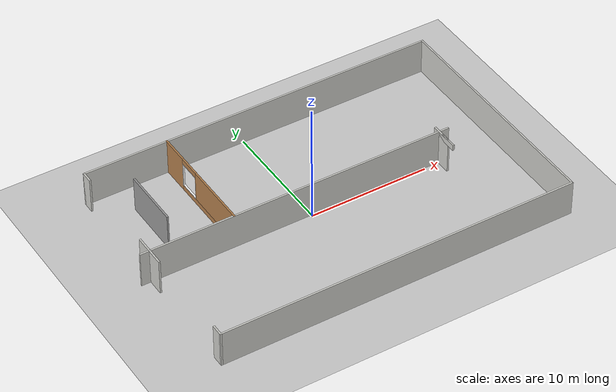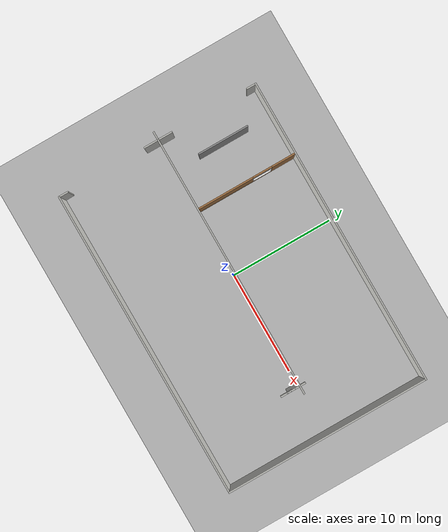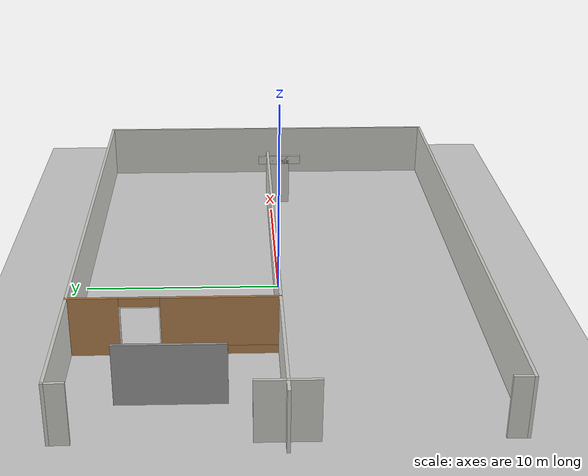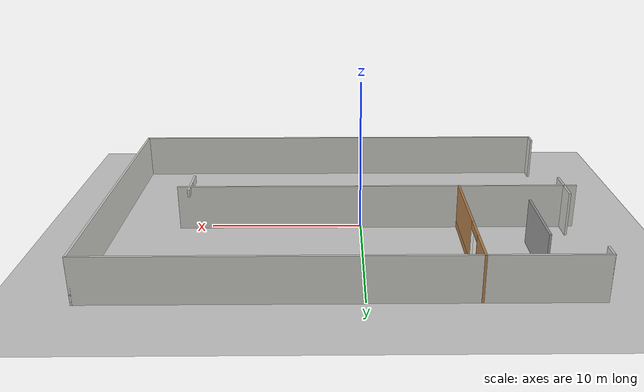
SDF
<sdf version="1.6">
 <world name="default">
  <model name="ground_plane">
   <static>1</static>
   <link name="link">
    <collision name="collision">
     <geometry><plane><normal>0 0 1</normal><size>100 100</size></plane></geometry>
     <surface><friction><ode><mu>100</mu><mu2>50</mu2></ode></friction></surface>
    </collision>
    <visual name="visual">
     <cast_shadows>0</cast_shadows>
     <geometry><plane><normal>0 0 1</normal><size>100 100</size></plane></geometry>
     <material>
      <script><uri>file://media/materials/scripts/gazebo.material</uri><name>Gazebo/Grey</name></script>
     </material>
    </visual>
   </link>
  </model>
  <model name="robot_house2_0">
   <pose>1.40144 0.109939 0 0 -0 0</pose>
   <link name="Wall_0">
    <collision name="Wall_0_Collision">
     <geometry><box><size>30 0.15 3</size></box></geometry>
     <pose>0 0 1.5 0 -0 0</pose>
    </collision>
    <visual name="Wall_0_Visual">
     <pose>0 0 1.5 0 -0 0</pose>
     <geometry><box><size>30 0.15 3</size></box></geometry>
     <material>
      <script><uri>file://media/materials/scripts/gazebo.material</uri><name>Gazebo/CeilingTiled</name></script>
      <ambient>1 1 1 1</ambient>
     </material>
    </visual>
    <pose>-1e-06 9.92401 0 0 -0 0</pose>
   </link>
   <link name="Wall_1">
    <collision name="Wall_1_Collision">
     <geometry><box><size>20 0.15 3</size></box></geometry>
     <pose>0 0 1.5 0 -0 0</pose>
    </collision>
    <visual name="Wall_1_Visual">
     <pose>0 0 1.5 0 -0 0</pose>
     <geometry><box><size>20 0.15 3</size></box></geometry>
     <material>
      <script><uri>file://media/materials/scripts/gazebo.material</uri><name>Gazebo/CeilingTiled</name></script>
      <ambient>1 1 1 1</ambient>
     </material>
    </visual>
    <pose>14.925 -0.00099 0 0 0 -1.5708</pose>
   </link>
   <link name="Wall_11">
    <collision name="Wall_11_Collision">
     <geometry><box><size>1.5 0.15 3</size></box></geometry>
     <pose>0 0 1.5 0 -0 0</pose>
    </collision>
    <visual name="Wall_11_Visual">
     <pose>0 0 1.5 0 -0 0</pose>
     <geometry><box><size>1.5 0.15 3</size></box></geometry>
     <material>
      <script><uri>file://media/materials/scripts/gazebo.material</uri><name>Gazebo/CeilingTiled</name></script>
      <ambient>1 1 1 1</ambient>
     </material>
    </visual>
    <pose>-14.925 0.74901 0 0 -0 1.5708</pose>
   </link>
   <link name="Wall_14">
    <collision name="Wall_14_Collision">
     <geometry><box><size>5 0.15 3</size></box></geometry>
     <pose>0 1 1.5 0 -0 0</pose>
    </collision>
    <visual name="Wall_14_Visual">
     <pose>0 1 1.5 0 -0 0</pose>
     <geometry><box><size>5 0.15 3</size></box></geometry>
     <material>
      <script><uri>file://media/materials/scripts/gazebo.material</uri><name>Gazebo/Grey</name></script>
      <ambient>1 1 1 1</ambient>
     </material>
    </visual>
    <pose>-13.075 4.99901 0 0 0 -1.5708</pose>
   </link>
   <link name="Wall_16">
    <collision name="Wall_16_Collision">
     <geometry><box><size>1.5 0.15 3</size></box></geometry>
     <pose>0 0 1.5 0 -0 0</pose>
    </collision>
    <visual name="Wall_16_Visual">
     <pose>0 0 1.5 0 -0 0</pose>
     <geometry><box><size>1.5 0.15 3</size></box></geometry>
     <material>
      <script><uri>file://media/materials/scripts/gazebo.material</uri><name>Gazebo/CeilingTiled</name></script>
      <ambient>1 1 1 1</ambient>
     </material>
    </visual>
    <pose>-14.925 -0.60099 0 0 0 -1.5708</pose>
   </link>
   <link name="Wall_2">
    <collision name="Wall_2_Collision">
     <geometry><box><size>30 0.15 3</size></box></geometry>
     <pose>0 0 1.5 0 -0 0</pose>
    </collision>
    <visual name="Wall_2_Visual">
     <pose>0 0 1.5 0 -0 0</pose>
     <geometry><box><size>30 0.15 3</size></box></geometry>
     <material>
      <script><uri>file://media/materials/scripts/gazebo.material</uri><name>Gazebo/CeilingTiled</name></script>
      <ambient>1 1 1 1</ambient>
     </material>
    </visual>
    <pose>-1e-06 -9.92599 0 0 -0 3.14159</pose>
   </link>
   <link name="Wall_21">
    <collision name="Wall_21_Collision">
     <geometry><box><size>1.19 0.15 3</size></box></geometry>
     <pose>0 0 1.5 0 -0 0</pose>
    </collision>
    <visual name="Wall_21_Visual">
     <pose>0 0 1.5 0 -0 0</pose>
     <geometry><box><size>1.19 0.15 3</size></box></geometry>
     <material>
      <script><uri>file://media/materials/scripts/gazebo.material</uri><name>Gazebo/CeilingTiled</name></script>
      <ambient>1 1 1 1</ambient>
     </material>
    </visual>
    <pose>9.925 -0.60099 0 0 0 -1.5708</pose>
   </link>
   <link name="Wall_23">
    <collision name="Wall_23_Collision">
     <geometry><box><size>2.5 0.15 0.5</size></box></geometry>
     <pose>0 0 2.75 0 -0 0</pose>
    </collision>
    <visual name="Wall_23_Visual">
     <pose>0 0 2.75 0 -0 0</pose>
     <geometry><box><size>2.5 0.15 0.5</size></box></geometry>
     <material>
      <script><uri>file://media/materials/scripts/gazebo.material</uri><name>Gazebo/CeilingTiled</name></script>
      <ambient>1 1 1 1</ambient>
     </material>
    </visual>
    <pose>9.925 -0.60099 0 0 0 -1.5708</pose>
   </link>
   <link name="Wall_22">
    <collision name="Wall_22_Collision">
     <geometry><box><size>1 0.15 3</size></box></geometry>
     <pose>0 0 1.5 0 -0 0</pose>
    </collision>
    <visual name="Wall_22_Visual">
     <pose>0 0 1.5 0 -0 0</pose>
     <geometry><box><size>1 0.15 3</size></box></geometry>
     <material>
      <script><uri>file://media/materials/scripts/gazebo.material</uri><name>Gazebo/CeilingTiled</name></script>
      <ambient>1 1 1 1</ambient>
     </material>
    </visual>
    <pose>-14.925 -9.50099 0 0 -0 1.5708</pose>
   </link>
   <link name="Wall_5">
    <collision name="Wall_5_Collision">
     <geometry><box><size>26.5 0.15 3</size></box></geometry>
     <pose>0 0 1.5 0 -0 0</pose>
    </collision>
    <visual name="Wall_5_Visual">
     <pose>0 0 1.5 0 -0 0</pose>
     <geometry><box><size>26.5 0.15 3</size></box></geometry>
     <material>
      <script><uri>file://media/materials/scripts/gazebo.material</uri><name>Gazebo/CeilingTiled</name></script>
      <ambient>1 1 1 1</ambient>
     </material>
    </visual>
    <pose>-2.5 0.07401 0 0 -0 0</pose>
   </link>
   <link name="Wall_7">
    <pose>-7.925 5.00101 0 0 0 -1.5708</pose>
    <visual name="Wall_7_Visual_0">
     <pose>-3.7615 0 1.5 0 -0 0</pose>
     <geometry><box><size>2.477 0.15 3</size></box></geometry>
     <material>
      <script><uri>file://media/materials/scripts/gazebo.material</uri><name>Gazebo/Wood</name></script>
      <ambient>1 1 1 1</ambient>
     </material>
    </visual>
    <collision name="Wall_7_Collision_0">
     <geometry><box><size>2.477 0.15 3</size></box></geometry>
     <pose>-3.7615 0 1.5 0 -0 0</pose>
    </collision>
    <visual name="Wall_7_Visual_1">
     <pose>1.2385 0 0.225 0 -0 0</pose>
     <geometry><box><size>7.523 0.15 0.45</size></box></geometry>
     <material>
      <script><uri>file://media/materials/scripts/gazebo.material</uri><name>Gazebo/Wood</name></script>
      <ambient>1 1 1 1</ambient>
     </material>
    </visual>
    <collision name="Wall_7_Collision_1">
     <geometry><box><size>7.523 0.15 0.45</size></box></geometry>
     <pose>1.2385 0 0.225 0 -0 0</pose>
    </collision>
    <visual name="Wall_7_Visual_2">
     <pose>2.1885 0 1.725 0 -0 0</pose>
     <geometry><box><size>5.623 0.15 2.55</size></box></geometry>
     <material>
      <script><uri>file://media/materials/scripts/gazebo.material</uri><name>Gazebo/Wood</name></script>
      <ambient>1 1 1 1</ambient>
     </material>
    </visual>
    <collision name="Wall_7_Collision_2">
     <geometry><box><size>5.623 0.15 2.55</size></box></geometry>
     <pose>2.1885 0 1.725 0 -0 0</pose>
    </collision>
    <visual name="Wall_7_Visual_3">
     <pose>-1.573 0 2.775 0 -0 0</pose>
     <geometry><box><size>1.9 0.15 0.45</size></box></geometry>
     <material>
      <script><uri>file://media/materials/scripts/gazebo.material</uri><name>Gazebo/Wood</name></script>
      <ambient>1 1 1 1</ambient>
     </material>
    </visual>
    <collision name="Wall_7_Collision_3">
     <geometry><box><size>1.9 0.15 0.45</size></box></geometry>
     <pose>-1.573 0 2.775 0 -0 0</pose>
    </collision>
   </link>
   <link name="Wall_24">
    <pose>-7.925 5.00101 0 0 0 -1.5708</pose>
    <visual name="Wall_24_Visual_0">
     <pose>-2.498 0 1.5 0 -0 0</pose>
     <geometry><box><size>0.05 0.15 2.1</size></box></geometry>
     <material>
      <ambient>1 1 1 1</ambient>
      <diffuse>1 1 1 1</diffuse>
      <specular>0 0 0 0</specular>
      <emissive>0 0 0 1</emissive>
     </material>
    </visual>
    <collision name="Wall_24_Collision_0">
     <geometry><box><size>0.05 0.15 2.1</size></box></geometry>
     <pose>-2.498 0 1.5 0 -0 0</pose>
    </collision>
    <visual name="Wall_24_Visual_1">
     <pose>-1.573 0 0.475 0 -0 0</pose>
     <geometry><box><size>1.85 0.15 0.05</size></box></geometry>
     <material>
      <ambient>1 1 1 1</ambient>
      <diffuse>1 1 1 1</diffuse>
      <specular>0 0 0 0</specular>
      <emissive>0 0 0 1</emissive>
     </material>
    </visual>
    <collision name="Wall_24_Collision_1">
     <geometry><box><size>1.85 0.15 0.05</size></box></geometry>
     <pose>-1.573 0 0.475 0 -0 0</pose>
    </collision>
    <visual name="Wall_24_Visual_2">
     <pose>-0.648 0 1.475 0 -0 0</pose>
     <geometry><box><size>0.05 0.15 2.05</size></box></geometry>
     <material>
      <ambient>1 1 1 1</ambient>
      <diffuse>1 1 1 1</diffuse>
      <specular>0 0 0 0</specular>
      <emissive>0 0 0 1</emissive>
     </material>
    </visual>
    <collision name="Wall_24_Collision_2">
     <geometry><box><size>0.05 0.15 2.05</size></box></geometry>
     <pose>-0.648 0 1.475 0 -0 0</pose>
    </collision>
    <visual name="Wall_24_Visual_3">
     <pose>-1.548 0 2.525 0 -0 0</pose>
     <geometry><box><size>1.85 0.15 0.05</size></box></geometry>
     <material>
      <ambient>1 1 1 1</ambient>
      <diffuse>1 1 1 1</diffuse>
      <specular>0 0 0 0</specular>
      <emissive>0 0 0 1</emissive>
     </material>
    </visual>
    <collision name="Wall_24_Collision_3">
     <geometry><box><size>1.85 0.15 0.05</size></box></geometry>
     <pose>-1.548 0 2.525 0 -0 0</pose>
    </collision>
   </link>
   <link name="Wall_9">
    <collision name="Wall_9_Collision">
     <geometry><box><size>1 0.15 3</size></box></geometry>
     <pose>0 0 1.5 0 -0 0</pose>
    </collision>
    <visual name="Wall_9_Visual">
     <pose>0 0 1.5 0 -0 0</pose>
     <geometry><box><size>1 0.15 3</size></box></geometry>
     <material>
      <script><uri>file://media/materials/scripts/gazebo.material</uri><name>Gazebo/CeilingTiled</name></script>
      <ambient>1 1 1 1</ambient>
     </material>
    </visual>
    <pose>-14.925 9.49901 0 0 0 -1.5708</pose>
   </link>
   <static>1</static>
  </model>
 </world>
</sdf>
